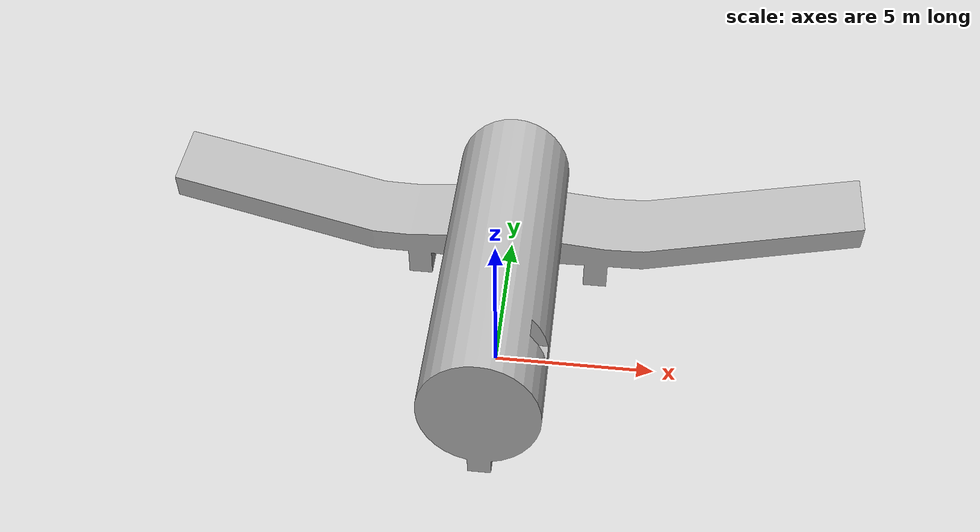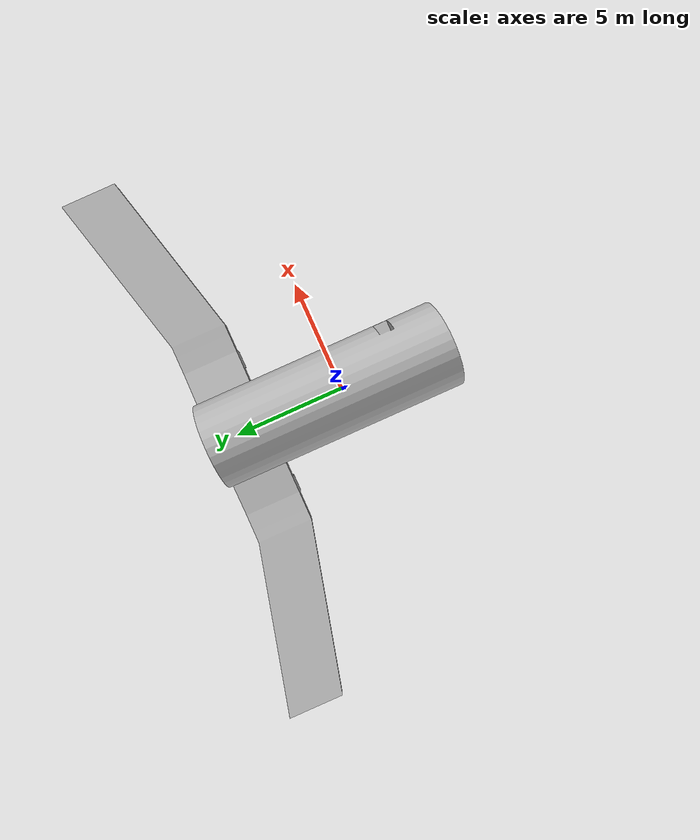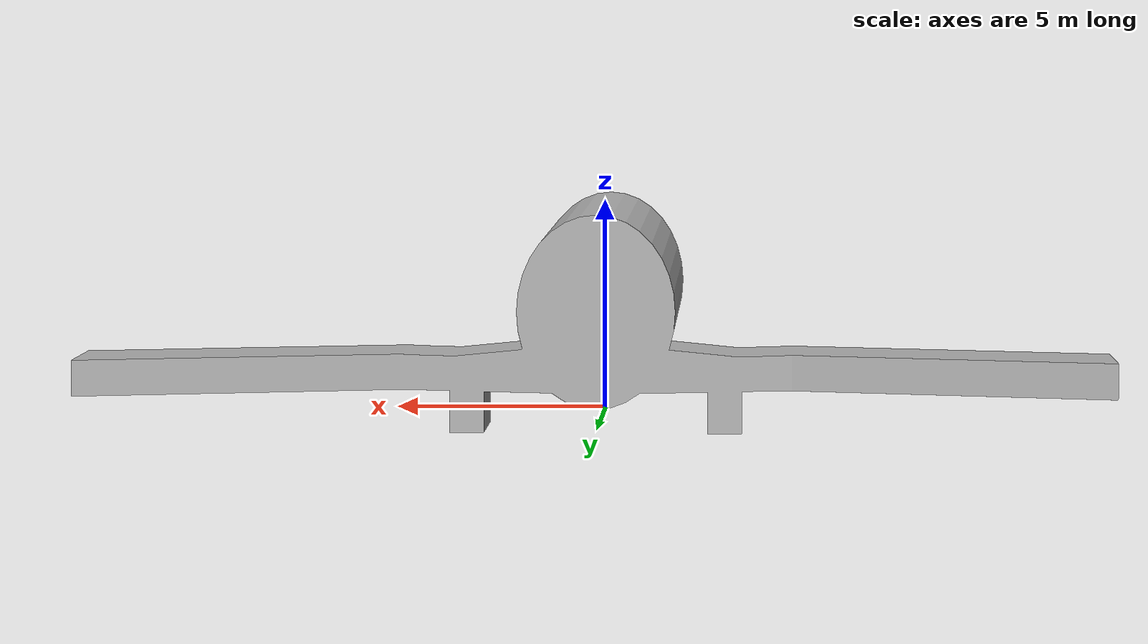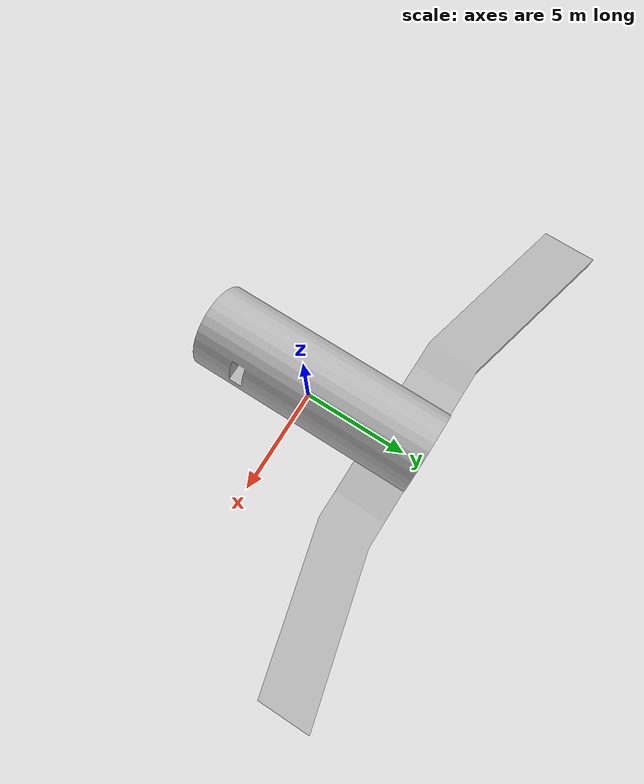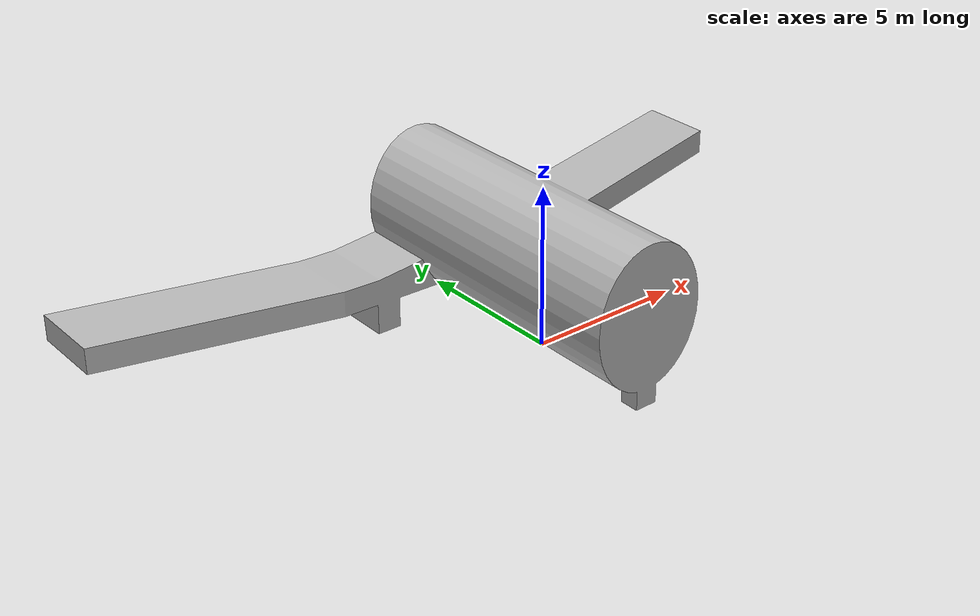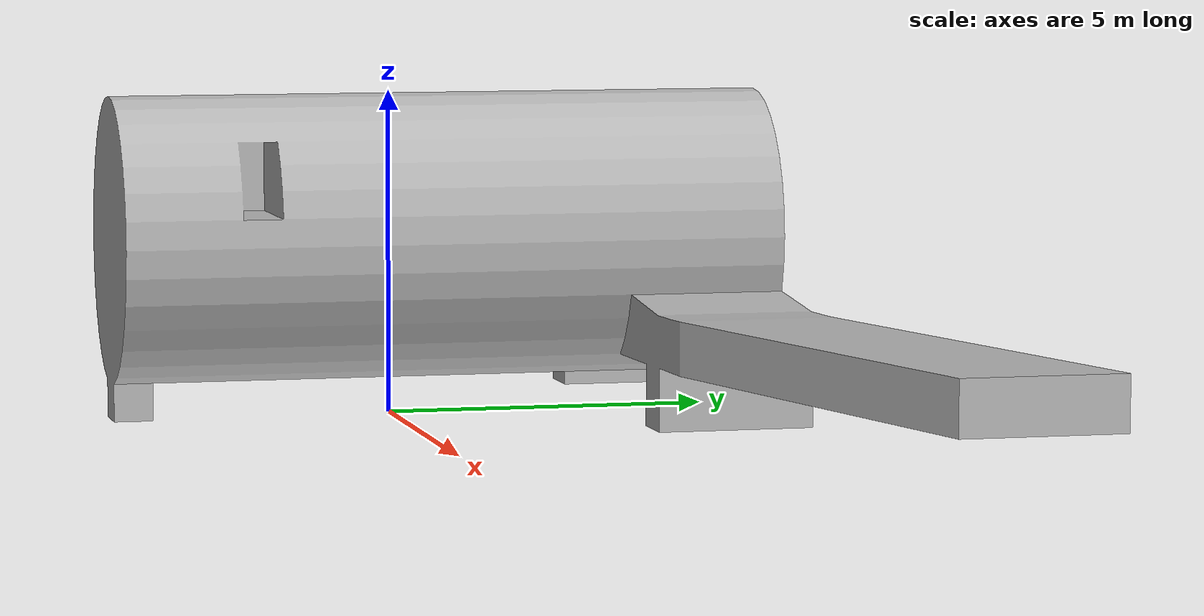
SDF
<?xml version="1.0"?>
<sdf version="1.4">

  <model name="airplane">
    <pose>0 0 0  0 0 0</pose>
    <static>true</static>
    <link name="body">
      <visual name="visual">
        <geometry>
          <mesh>
            <uri>model://airplane/meshes/airplane.stl</uri>
          </mesh>
        </geometry>
      </visual>

      <collision name="collision">
        <geometry>
          <mesh>
            <uri>model://airplane/meshes/airplane.stl</uri>
          </mesh>
        </geometry>
      </collision>

      <inertial name="inertial">
        <mass>1000</mass>
        <inertia>
          <ixx>7732</ixx>       <!-- for a box: ixx = 0.083 * mass * (y*y + z*z) -->
          <ixy>0.0</ixy>         <!-- for a box: ixy = 0 -->
          <ixz>0.0</ixz>         <!-- for a box: ixz = 0 -->
          <iyy>2752</iyy>       <!-- for a box: iyy = 0.083 * mass * (x*x + z*z) -->
          <iyz>0.0</iyz>         <!-- for a box: iyz = 0 -->
          <izz>5644</izz>       <!-- for a box: izz = 0.083 * mass * (x*x + y*y) -->
        </inertia>
      </inertial>

    </link>
  </model>

</sdf>
